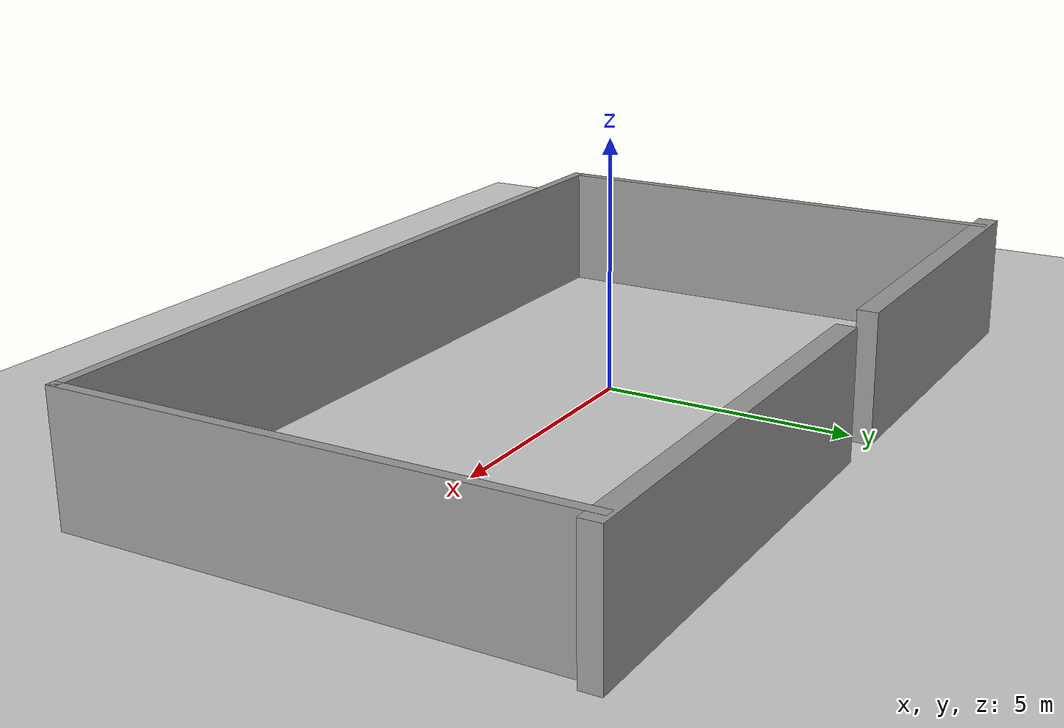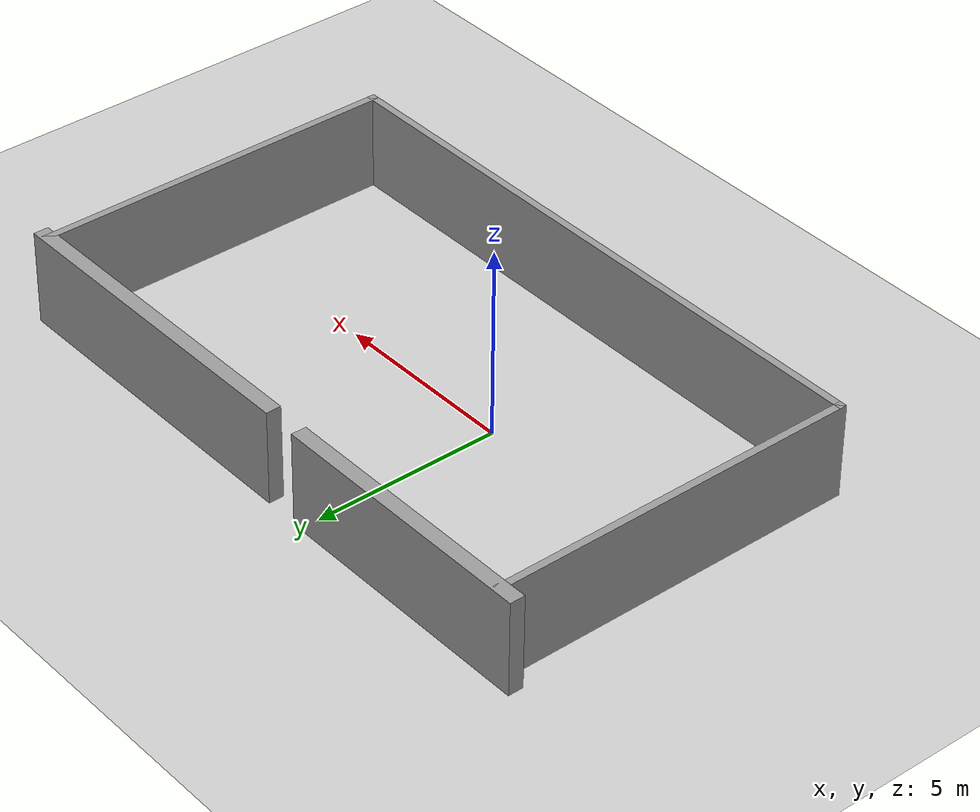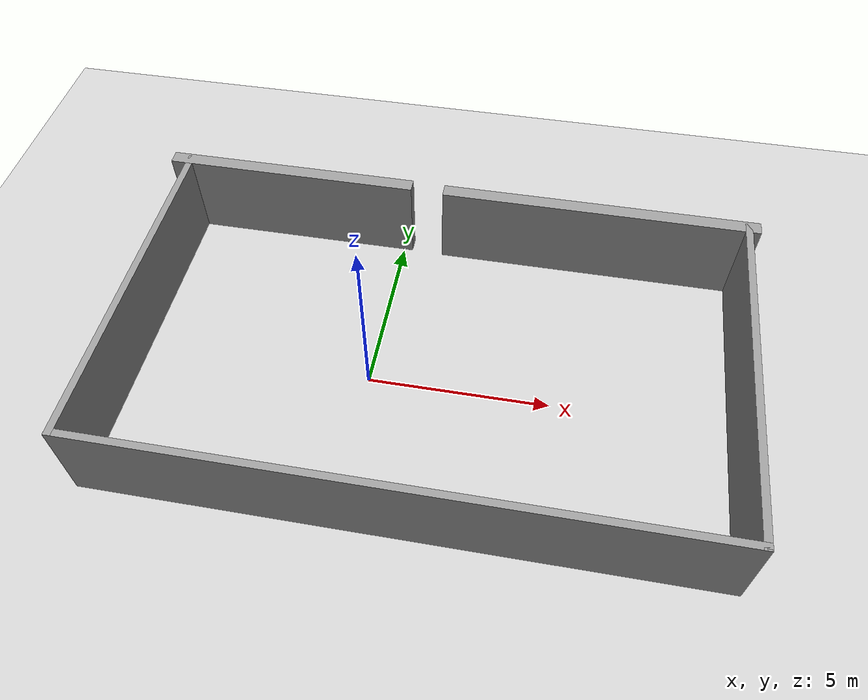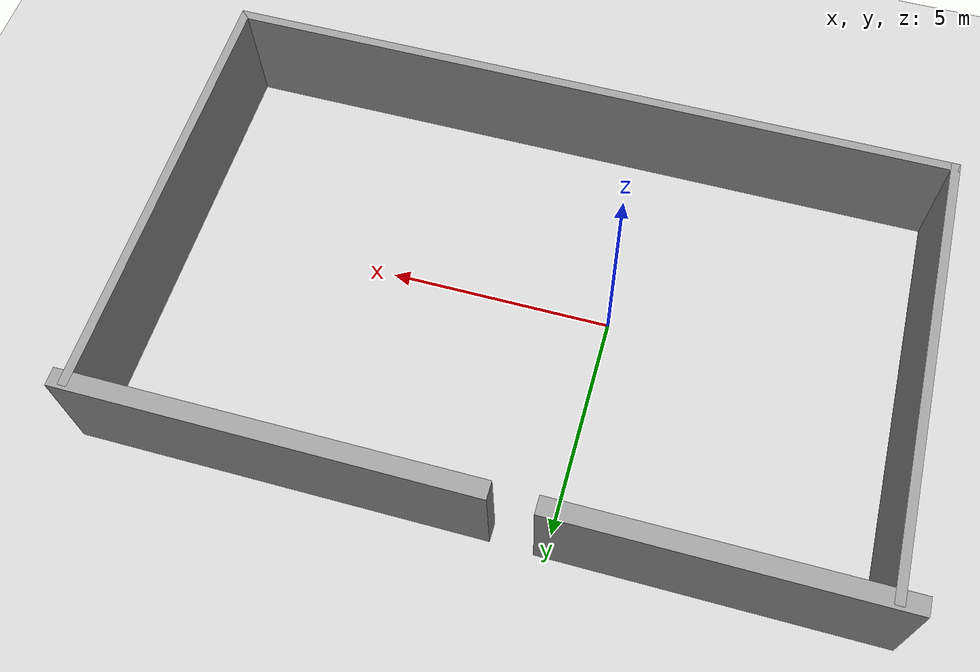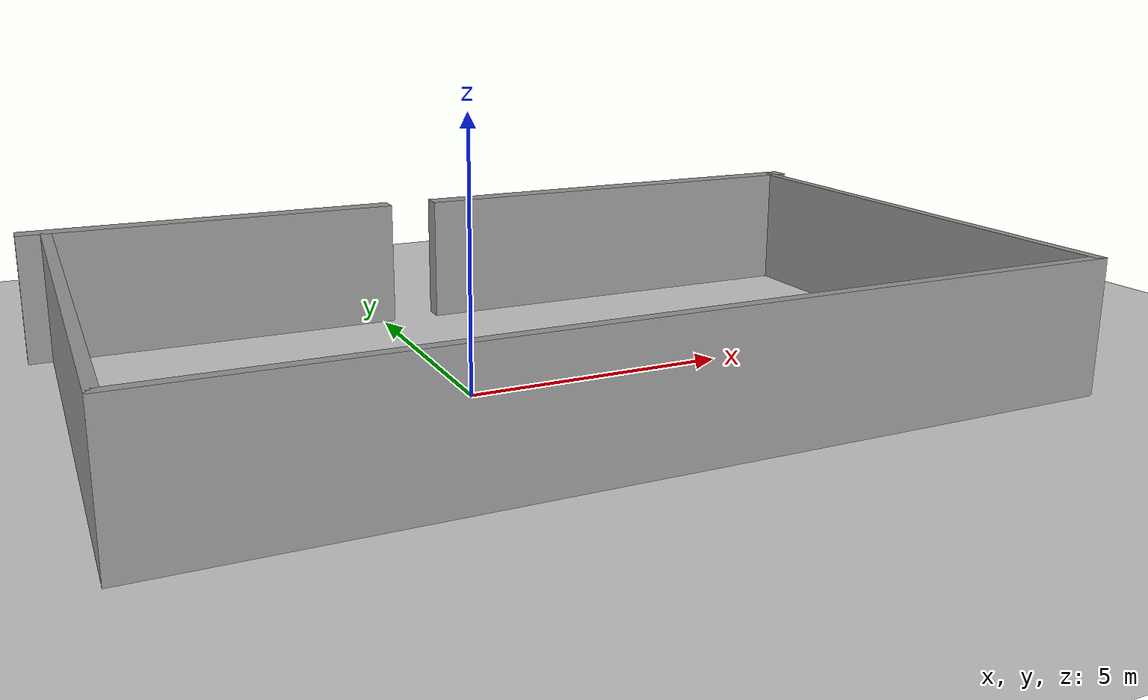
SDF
<sdf version="1.4">
 <world name="default">
  <light name="sun" type="directional">
   <pose>0 0 10 0 -0 0</pose>
   <diffuse>0.8 0.8 0.8 1</diffuse>
   <specular>0.2 0.2 0.2 1</specular>
   <attenuation>
    <range>1000</range>
    <constant>0.9</constant>
    <linear>0.01</linear>
    <quadratic>0.001</quadratic>
   </attenuation>
   <direction>-0.5 0.1 -0.9</direction>
  </light>
  <model name="ground_plane">
   <static>1</static>
   <link name="link">
    <collision name="collision">
     <geometry><plane><normal>0 0 1</normal><size>100 100</size></plane></geometry>
     <surface><friction><ode><mu>100</mu><mu2>50</mu2></ode></friction></surface>
    </collision>
    <visual name="visual">
     <cast_shadows>0</cast_shadows>
     <geometry><plane><normal>0 0 1</normal><size>100 100</size></plane></geometry>
     <material>
      <script><uri>file://media/materials/scripts/gazebo.material</uri><name>Gazebo/Grey</name></script>
     </material>
    </visual>
    <velocity_decay><linear>0</linear><angular>0</angular></velocity_decay>
   </link>
  </model>
  <physics type="ode">
   <max_step_size>0.001</max_step_size>
   <real_time_factor>1</real_time_factor>
   <real_time_update_rate>1000</real_time_update_rate>
   <gravity>0 0 -9.8</gravity>
  </physics>
  <scene><ambient>0.4 0.4 0.4 1</ambient><background>0.7 0.7 0.7 1</background><shadows>1</shadows></scene>
  <spherical_coordinates>
   <surface_model>EARTH_WGS84</surface_model>
   <latitude_deg>0</latitude_deg>
   <longitude_deg>0</longitude_deg>
   <elevation>0</elevation>
   <heading_deg>0</heading_deg>
  </spherical_coordinates>
  <model name="circle_big">
   <pose>3.29383 4.29408 0 0 -0 0</pose>
   <link name="Wall_10">
    <collision name="Wall_10_Collision">
     <geometry><box><size>9.94267 0.2 2.5</size></box></geometry>
     <pose>0 0 1.25 0 -0 0</pose>
    </collision>
    <visual name="Wall_10_Visual">
     <pose>0 0 1.25 0 -0 0</pose>
     <geometry><box><size>9.94267 0.2 2.5</size></box></geometry>
     <material>
      <script><uri>file://media/materials/scripts/gazebo.material</uri><name>Gazebo/Grey</name></script>
     </material>
    </visual>
    <velocity_decay><linear>0</linear><angular>0</angular></velocity_decay>
    <pose>-9.80185 -3.84902 0 0 0 -1.5708</pose>
   </link>
   <link name="Wall_11">
    <collision name="Wall_11_Collision">
     <geometry><box><size>16.5636 0.2 2.5</size></box></geometry>
     <pose>0 0 1.25 0 -0 0</pose>
    </collision>
    <visual name="Wall_11_Visual">
     <pose>0 0 1.25 0 -0 0</pose>
     <geometry><box><size>16.5636 0.2 2.5</size></box></geometry>
     <material>
      <script><uri>file://media/materials/scripts/gazebo.material</uri><name>Gazebo/Grey</name></script>
     </material>
    </visual>
    <velocity_decay><linear>0</linear><angular>0</angular></velocity_decay>
    <pose>-1.62006 -8.72036 0 0 -0 0</pose>
   </link>
   <link name="Wall_12">
    <collision name="Wall_12_Collision">
     <geometry><box><size>9.90837 0.2 2.5</size></box></geometry>
     <pose>0 0 1.25 0 -0 0</pose>
    </collision>
    <visual name="Wall_12_Visual">
     <pose>0 0 1.25 0 -0 0</pose>
     <geometry><box><size>9.90837 0.2 2.5</size></box></geometry>
     <material>
      <script><uri>file://media/materials/scripts/gazebo.material</uri><name>Gazebo/Grey</name></script>
     </material>
    </visual>
    <velocity_decay><linear>0</linear><angular>0</angular></velocity_decay>
    <pose>6.56173 -3.86617 0 0 -0 1.5708</pose>
   </link>
   <link name="Wall_14">
    <collision name="Wall_14_Collision">
     <geometry><box><size>7.3 0.4 2.5</size></box></geometry>
     <pose>0 0 1.25 0 -0 0</pose>
    </collision>
    <visual name="Wall_14_Visual">
     <pose>0 0 1.25 0 -0 0</pose>
     <geometry><box><size>7.3 0.4 2.5</size></box></geometry>
     <material>
      <script><uri>file://media/materials/scripts/gazebo.material</uri><name>Gazebo/Grey</name></script>
     </material>
    </visual>
    <velocity_decay><linear>0</linear><angular>0</angular></velocity_decay>
    <pose>-6.69723 0.99945 0 0 -0 0</pose>
   </link>
   <link name="Wall_16">
    <collision name="Wall_16_Collision">
     <geometry><box><size>9 0.4 2.5</size></box></geometry>
     <pose>0 0 1.25 0 -0 0</pose>
    </collision>
    <visual name="Wall_16_Visual">
     <pose>0 0 1.25 0 -0 0</pose>
     <geometry><box><size>9 0.4 2.5</size></box></geometry>
     <material>
      <script><uri>file://media/materials/scripts/gazebo.material</uri><name>Gazebo/Grey</name></script>
     </material>
    </visual>
    <velocity_decay><linear>0</linear><angular>0</angular></velocity_decay>
    <pose>2.38793 0.965144 0 0 -0 3.14159</pose>
   </link>
   <static>1</static>
  </model>
 </world>
</sdf>
